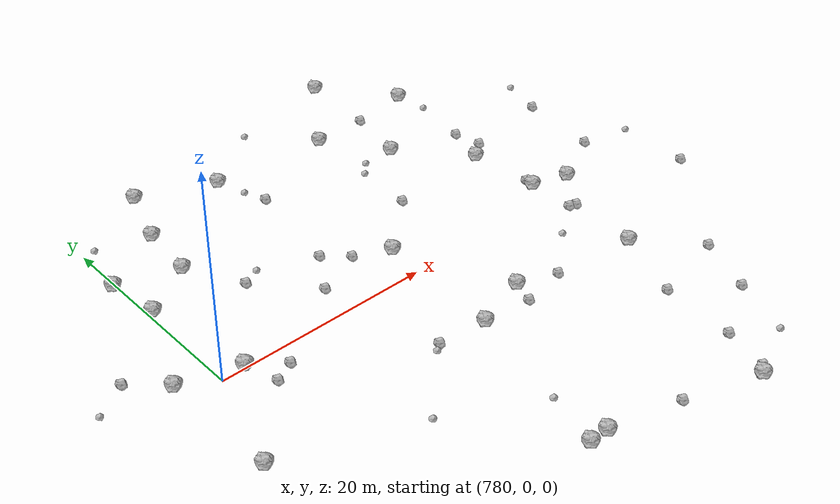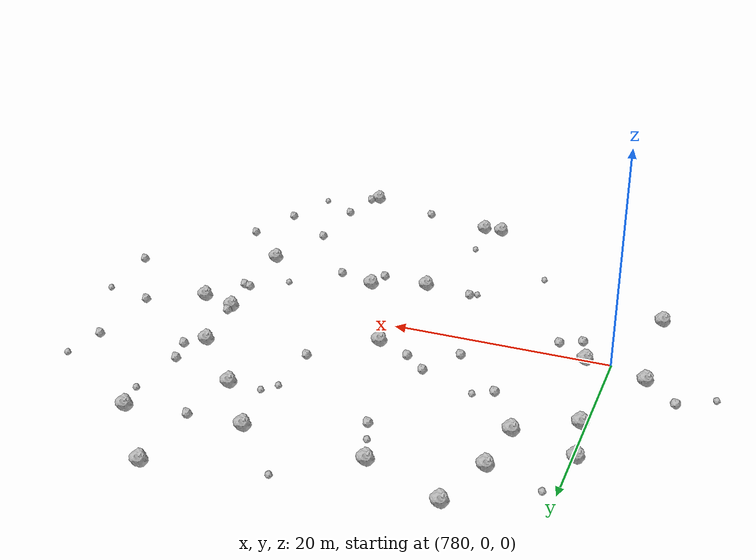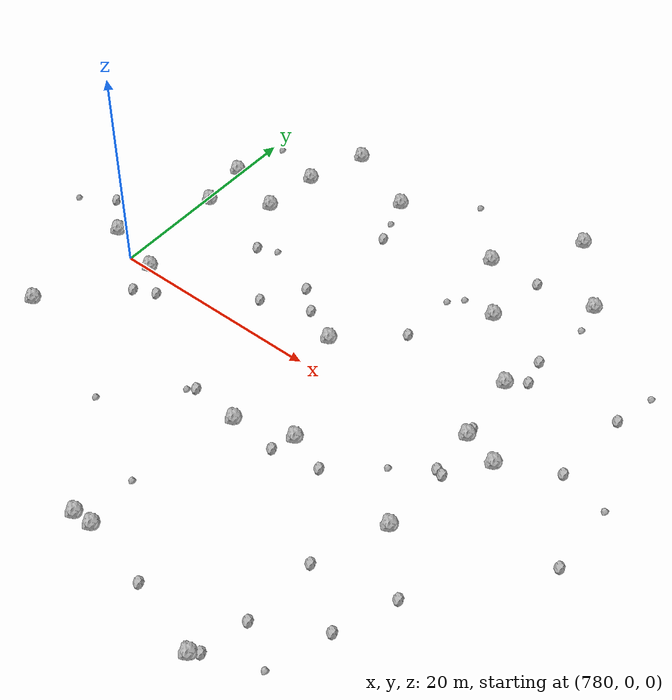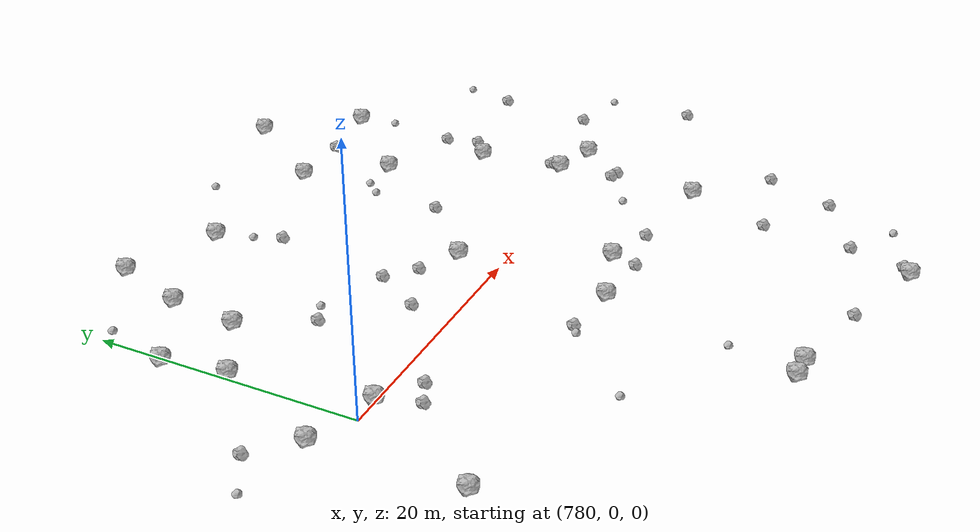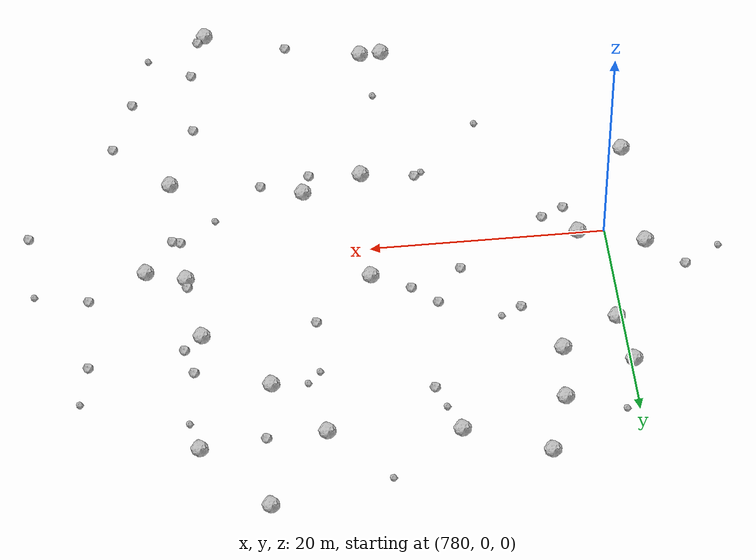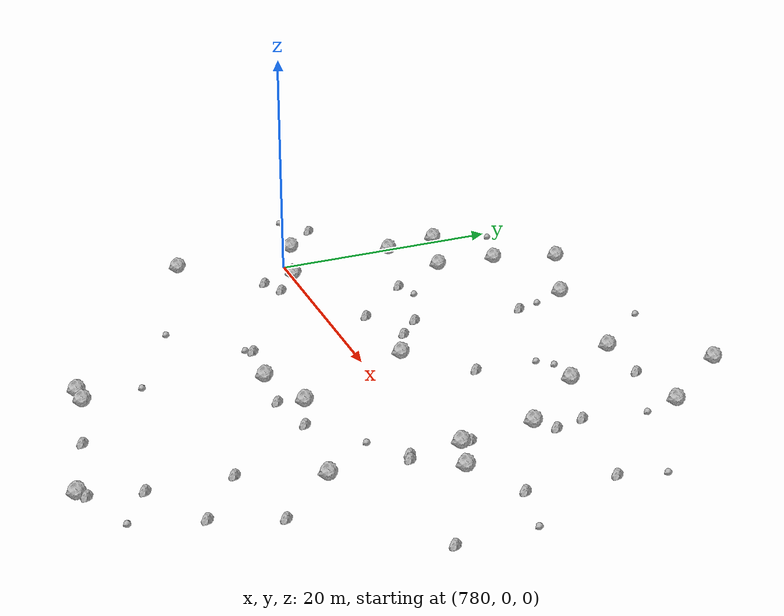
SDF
<sdf version="1.6">
 <world name="default">
  <include><uri>model://sun</uri></include>
  <model name="rock1_20_4">
   <include><uri>model://rock1</uri><pose>799.9652221330065 -8.463312233253038 0.5 0 0 0</pose></include>
  </model>
  <model name="rock1_20_5">
   <include><uri>model://rock1</uri><pose>780.4962738270717 10.133128707522197 0.5 0 0 0</pose></include>
  </model>
  <model name="rock1_20_6">
   <include><uri>model://rock1</uri><pose>812.0337293607895 -27.006542799037287 0.5 0 0 0</pose></include>
  </model>
  <model name="rock1_20_7">
   <include><uri>model://rock1</uri><pose>819.1068985619345 1.1514173738341356 0.5 0 0 0</pose></include>
  </model>
  <model name="rock1_20_8">
   <include><uri>model://rock1</uri><pose>814.9543749718605 8.741920190277526 0.5 0 0 0</pose></include>
  </model>
  <model name="rock1_20_9">
   <include><uri>model://rock1</uri><pose>794.7262064952489 20.951835602240422 0.5 0 0 0</pose></include>
  </model>
  <model name="rock1_20_10">
   <include><uri>model://rock1</uri><pose>800.3314459295257 3.4207906277061397 0.5 0 0 0</pose></include>
  </model>
  <model name="rock1_20_11">
   <include><uri>model://rock1</uri><pose>785.9377051729342 18.422602453112695 0.5 0 0 0</pose></include>
  </model>
  <model name="rock1_20_12">
   <include><uri>model://rock1</uri><pose>796.6383927255666 -23.33038890432821 0.5 0 0 0</pose></include>
  </model>
  <model name="rock1_20_13">
   <include><uri>model://rock1</uri><pose>805.103705864322 -6.796378042060269 0.5 0 0 0</pose></include>
  </model>
  <model name="rock1_20_14">
   <include><uri>model://rock1</uri><pose>782.3172554208429 0.14334917093788135 0.5 0 0 0</pose></include>
  </model>
  <model name="rock1_20_15">
   <include><uri>model://rock1</uri><pose>779.766107679146 14.936784768057933 0.5 0 0 0</pose></include>
  </model>
  <model name="rock1_20_16">
   <include><uri>model://rock1</uri><pose>798.476754216886 -23.29740374125595 0.5 0 0 0</pose></include>
  </model>
  <model name="rock1_20_17">
   <include><uri>model://rock1</uri><pose>815.7917140021216 2.195194907111137 0.5 0 0 0</pose></include>
  </model>
  <model name="rock1_20_18">
   <include><uri>model://rock1</uri><pose>776.786700518474 1.7901555112674146 0.5 0 0 0</pose></include>
  </model>
  <model name="rock1_20_19">
   <include><uri>model://rock1</uri><pose>777.1593464080468 -9.25439506766654 0.5 0 0 0</pose></include>
  </model>
  <model name="rock1_20_20">
   <include><uri>model://rock1</uri><pose>810.8304440274292 27.245426273141206 0.5 0 0 0</pose></include>
  </model>
  <model name="rock1_20_21">
   <include><uri>model://rock1</uri><pose>816.0246872959465 20.861257750618456 0.5 0 0 0</pose></include>
  </model>
  <model name="rock1_20_22">
   <include><uri>model://rock1</uri><pose>816.3747736537536 -8.890165399601269 0.5 0 0 0</pose></include>
  </model>
  <model name="rock1_20_23">
   <include><uri>model://rock1</uri><pose>809.6900934455567 14.592001214482963 0.5 0 0 0</pose></include>
  </model>
  <model name="rock1_20_24">
   <include><uri>model://rock1</uri><pose>785.4050019717922 13.10786340090413 0.5 0 0 0</pose></include>
  </model>
  <model name="rock1_20_25">
   <include><uri>model://rock1</uri><pose>805.6312465114278 20.075871147140596 0.5 0 0 0</pose></include>
  </model>
  <model name="rock1_20_26">
   <include><uri>model://rock1</uri><pose>787.7629086609356 23.90937272279038 0.5 0 0 0</pose></include>
  </model>
  <model name="rock2_20_0">
   <include><uri>model://rock2</uri><pose>783.165296475068 -2.899395037531754 0.3 0 0 0</pose></include>
  </model>
  <model name="rock2_20_1">
   <include><uri>model://rock2</uri><pose>818.980781764459 -19.095024574958956 0.3 0 0 0</pose></include>
  </model>
  <model name="rock2_20_2">
   <include><uri>model://rock2</uri><pose>792.716279948455 3.208544405379932 0.3 0 0 0</pose></include>
  </model>
  <model name="rock2_20_3">
   <include><uri>model://rock2</uri><pose>810.5562365205179 20.171501037224118 0.3 0 0 0</pose></include>
  </model>
  <model name="rock2_20_4">
   <include><uri>model://rock2</uri><pose>804.4046807716503 -8.854184203112126 0.3 0 0 0</pose></include>
  </model>
  <model name="rock2_20_5">
   <include><uri>model://rock2</uri><pose>796.3785829965243 16.18655912369892 0.3 0 0 0</pose></include>
  </model>
  <model name="rock2_20_6">
   <include><uri>model://rock2</uri><pose>797.0739380499583 4.9950970609924354 0.3 0 0 0</pose></include>
  </model>
  <model name="rock2_20_7">
   <include><uri>model://rock2</uri><pose>805.3515693895208 8.07062742133968 0.3 0 0 0</pose></include>
  </model>
  <model name="rock2_20_8">
   <include><uri>model://rock2</uri><pose>808.6382491060991 -8.014875869501616 0.3 0 0 0</pose></include>
  </model>
  <model name="rock2_20_9">
   <include><uri>model://rock2</uri><pose>828.7027461691417 -3.881899135194704 0.3 0 0 0</pose></include>
  </model>
  <model name="rock2_20_10">
   <include><uri>model://rock2</uri><pose>815.954282858794 -2.1458096306593397 0.3 0 0 0</pose></include>
  </model>
  <model name="rock2_20_11">
   <include><uri>model://rock2</uri><pose>788.2097234072648 8.068817282327615 0.3 0 0 0</pose></include>
  </model>
  <model name="rock2_20_12">
   <include><uri>model://rock2</uri><pose>815.7338379173694 3.0356329280335217 0.3 0 0 0</pose></include>
  </model>
  <model name="rock2_20_13">
   <include><uri>model://rock2</uri><pose>813.8986668695766 -15.44029543951783 0.3 0 0 0</pose></include>
  </model>
  <model name="rock2_20_14">
   <include><uri>model://rock2</uri><pose>805.0192296229206 -24.86207129729719 0.3 0 0 0</pose></include>
  </model>
  <model name="rock2_20_15">
   <include><uri>model://rock2</uri><pose>824.4765062855377 11.143535668143706 0.3 0 0 0</pose></include>
  </model>
  <model name="rock2_20_16">
   <include><uri>model://rock2</uri><pose>824.0304614450494 3.7777138788059332 0.3 0 0 0</pose></include>
  </model>
  <model name="rock2_20_17">
   <include><uri>model://rock2</uri><pose>820.9927965278424 -13.789411479819226 0.3 0 0 0</pose></include>
  </model>
  <model name="rock2_20_18">
   <include><uri>model://rock2</uri><pose>813.5760481901392 -22.233984553058605 0.3 0 0 0</pose></include>
  </model>
  <model name="rock2_20_19">
   <include><uri>model://rock2</uri><pose>812.6870228665027 -26.394588338135772 0.3 0 0 0</pose></include>
  </model>
  <model name="rock2_20_20">
   <include><uri>model://rock2</uri><pose>795.0194382809177 6.834263344158444 0.3 0 0 0</pose></include>
  </model>
  <model name="rock2_20_21">
   <include><uri>model://rock2</uri><pose>816.6146209071932 -2.365696564012403 0.3 0 0 0</pose></include>
  </model>
  <model name="rock2_20_22">
   <include><uri>model://rock2</uri><pose>785.1044305864815 -1.9591744191534168 0.3 0 0 0</pose></include>
  </model>
  <model name="rock2_20_23">
   <include><uri>model://rock2</uri><pose>795.3698095424776 -7.961369751573542 0.3 0 0 0</pose></include>
  </model>
  <model name="rock2_20_24">
   <include><uri>model://rock2</uri><pose>773.7876179282788 4.625752749726907 0.3 0 0 0</pose></include>
  </model>
  <model name="rock2_20_25">
   <include><uri>model://rock2</uri><pose>815.86136033985 12.558350825111262 0.3 0 0 0</pose></include>
  </model>
  <model name="rock2_20_26">
   <include><uri>model://rock2</uri><pose>816.4750202821452 10.033012887958783 0.3 0 0 0</pose></include>
  </model>
  <model name="rock3_20_0">
   <include><uri>model://rock3</uri><pose>795.5988830184606 18.25072367433352 0.2 0 0 0</pose></include>
  </model>
  <model name="rock3_20_1">
   <include><uri>model://rock3</uri><pose>789.9031307307982 8.845120428337466 0.2 0 0 0</pose></include>
  </model>
  <model name="rock3_20_2">
   <include><uri>model://rock3</uri><pose>794.7002230550972 -8.462775845908372 0.2 0 0 0</pose></include>
  </model>
  <model name="rock3_20_3">
   <include><uri>model://rock3</uri><pose>781.0551201737097 19.954949981165093 0.2 0 0 0</pose></include>
  </model>
  <model name="rock3_20_4">
   <include><uri>model://rock3</uri><pose>789.4221611206558 -13.857971662365447 0.2 0 0 0</pose></include>
  </model>
  <model name="rock3_20_5">
   <include><uri>model://rock3</uri><pose>800.7691429338557 25.256962290495544 0.2 0 0 0</pose></include>
  </model>
  <model name="rock3_20_6">
   <include><uri>model://rock3</uri><pose>797.8505428654117 -18.233756511742786 0.2 0 0 0</pose></include>
  </model>
  <model name="rock3_20_7">
   <include><uri>model://rock3</uri><pose>816.5820775368315 17.92675532200358 0.2 0 0 0</pose></include>
  </model>
  <model name="rock3_20_8">
   <include><uri>model://rock3</uri><pose>825.3397500033672 14.953302794479029 0.2 0 0 0</pose></include>
  </model>
  <model name="rock3_20_9">
   <include><uri>model://rock3</uri><pose>812.7838185211585 -4.479297572453113 0.2 0 0 0</pose></include>
  </model>
  <model name="rock3_20_10">
   <include><uri>model://rock3</uri><pose>817.1828136298133 -24.57056231936724 0.2 0 0 0</pose></include>
  </model>
  <model name="rock3_20_11">
   <include><uri>model://rock3</uri><pose>828.4988591736144 2.7414372834982146 0.2 0 0 0</pose></include>
  </model>
  <model name="rock3_20_12">
   <include><uri>model://rock3</uri><pose>805.5281908004248 13.417443987203903 0.2 0 0 0</pose></include>
  </model>
  <model name="rock3_20_13">
   <include><uri>model://rock3</uri><pose>770.6614318129041 2.731552381415476 0.2 0 0 0</pose></include>
  </model>
  <model name="rock3_20_14">
   <include><uri>model://rock3</uri><pose>806.613729865722 14.573014214045791 0.2 0 0 0</pose></include>
  </model>
 </world>
</sdf>
